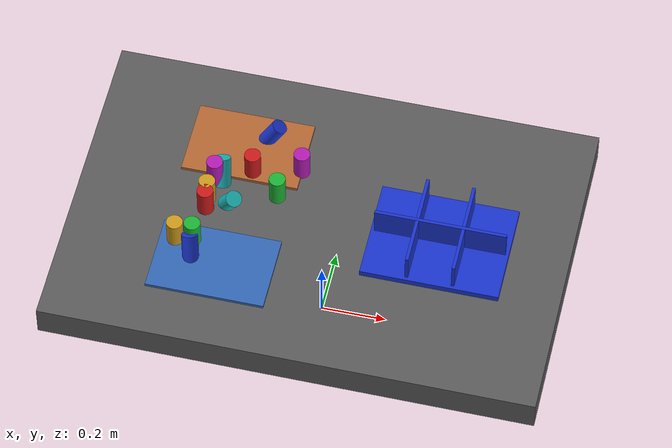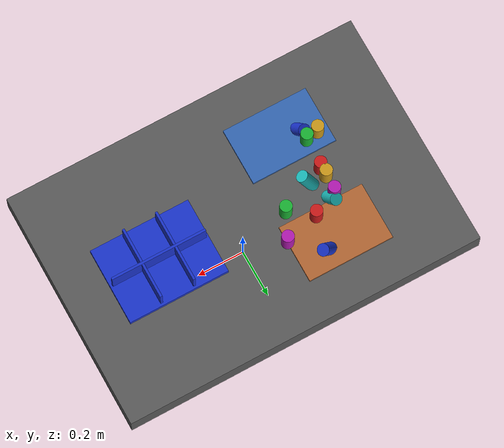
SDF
<?xml version="1.0" ?>
<sdf version="1.9">
  <!-- Standalone M1B scene.  The controller-backed Panda is spawned by the
       existing launch path; this file never alters the frozen M1A cube world. -->
  <world name="industrial_cylinder_v1">
    <physics name="bullet" type="bullet"><max_step_size>0.001</max_step_size><real_time_factor>1.0</real_time_factor></physics>
    <plugin name="gz::sim::systems::Physics" filename="gz-sim-physics-system"><engine><filename>gz-physics-bullet-featherstone-plugin</filename></engine></plugin>
    <plugin name="gz::sim::systems::UserCommands" filename="gz-sim-user-commands-system"/>
    <plugin name="gz::sim::systems::SceneBroadcaster" filename="gz-sim-scene-broadcaster-system"/>
    <plugin name="gz::sim::systems::Sensors" filename="gz-sim-sensors-system"><render_engine>ogre2</render_engine></plugin>
    <gravity>0 0 -9.81</gravity>
    <light type="directional" name="industrial_light"><pose>0 0 5 0 0 0</pose><direction>-0.3 0.2 -0.9</direction><diffuse>0.9 0.9 0.9 1</diffuse></light>
    <model name="industrial_work_table"><static>true</static><link name="link"><pose>0 0 0.4 0 0 0</pose><collision name="collision"><geometry><box><size>1.5 1.0 0.1</size></box></geometry></collision><visual name="visual"><geometry><box><size>1.5 1.0 0.1</size></box></geometry><material><diffuse>0.35 0.35 0.35 1</diffuse></material></visual></link></model>
    <model name="camera_fixture"><static>true</static><link name="camera_rgbd"><pose>-0.80 -0.80 1.40 0 0.77 0.93</pose><sensor name="front_rgbd" type="rgbd_camera"><always_on>1</always_on><update_rate>15</update_rate><topic>/xh/camera/rgbd</topic><camera><horizontal_fov>1.047</horizontal_fov><image><width>640</width><height>480</height><format>R8G8B8</format></image><clip><near>0.1</near><far>4.0</far></clip></camera></sensor></link></model>
    <model name="incoming_zone_a"><static>true</static><link name="link"><pose>-0.28 -0.22 0.455 0 0 0</pose><visual name="visual"><geometry><box><size>0.36 0.24 0.01</size></box></geometry><material><diffuse>0.2 0.4 0.7 1</diffuse></material></visual></link></model>
    <model name="incoming_zone_b"><static>true</static><link name="link"><pose>-0.28 0.22 0.455 0 0 0</pose><visual name="visual"><geometry><box><size>0.36 0.24 0.01</size></box></geometry><material><diffuse>0.7 0.4 0.2 1</diffuse></material></visual></link></model>
    <!-- M1B_RANDOM_PARTS_BEGIN -->
    <model name="cylinder_01"><pose>-0.3517 -0.0290 0.5000 0.0000 0.0000 1.5512</pose><link name="link"><inertial><mass>0.06</mass></inertial><collision name="collision"><geometry><cylinder><radius>0.025</radius><length>0.09</length></cylinder></geometry></collision><visual name="visual"><geometry><cylinder><radius>0.025</radius><length>0.09</length></cylinder></geometry><material><diffuse>0.800 0.100 0.100 1</diffuse><specular>0.15 0.15 0.15 1</specular></material></visual></link></model>
    <model name="cylinder_02"><pose>-0.1517 0.0604 0.5000 3.1416 0.0000 -2.8974</pose><link name="link"><inertial><mass>0.06</mass></inertial><collision name="collision"><geometry><cylinder><radius>0.025</radius><length>0.09</length></cylinder></geometry></collision><visual name="visual"><geometry><cylinder><radius>0.025</radius><length>0.09</length></cylinder></geometry><material><diffuse>0.100 0.700 0.200 1</diffuse><specular>0.15 0.15 0.15 1</specular></material></visual></link></model>
    <model name="cylinder_03"><pose>-0.3564 -0.1982 0.4800 0.4500 -0.3000 -2.2902</pose><link name="link"><inertial><mass>0.06</mass></inertial><collision name="collision"><geometry><cylinder><radius>0.025</radius><length>0.09</length></cylinder></geometry></collision><visual name="visual"><geometry><cylinder><radius>0.025</radius><length>0.09</length></cylinder></geometry><material><diffuse>0.100 0.200 0.800 1</diffuse><specular>0.15 0.15 0.15 1</specular></material></visual></link></model>
    <model name="cylinder_04"><pose>-0.3551 0.0079 0.5000 0.0000 0.0000 -2.9144</pose><link name="link"><inertial><mass>0.06</mass></inertial><collision name="collision"><geometry><cylinder><radius>0.025</radius><length>0.09</length></cylinder></geometry></collision><visual name="visual"><geometry><cylinder><radius>0.025</radius><length>0.09</length></cylinder></geometry><material><diffuse>0.800 0.600 0.100 1</diffuse><specular>0.15 0.15 0.15 1</specular></material></visual></link></model>
    <model name="cylinder_05"><pose>-0.1009 0.1676 0.5000 3.1416 0.0000 0.1879</pose><link name="link"><inertial><mass>0.06</mass></inertial><collision name="collision"><geometry><cylinder><radius>0.025</radius><length>0.09</length></cylinder></geometry></collision><visual name="visual"><geometry><cylinder><radius>0.025</radius><length>0.09</length></cylinder></geometry><material><diffuse>0.700 0.100 0.700 1</diffuse><specular>0.15 0.15 0.15 1</specular></material></visual></link></model>
    <model name="cylinder_06"><pose>-0.3295 0.0989 0.4800 0.4500 -0.3000 -2.3454</pose><link name="link"><inertial><mass>0.06</mass></inertial><collision name="collision"><geometry><cylinder><radius>0.025</radius><length>0.09</length></cylinder></geometry></collision><visual name="visual"><geometry><cylinder><radius>0.025</radius><length>0.09</length></cylinder></geometry><material><diffuse>0.100 0.700 0.700 1</diffuse><specular>0.15 0.15 0.15 1</specular></material></visual></link></model>
    <model name="cylinder_07"><pose>-0.2445 0.1312 0.5000 0.0000 0.0000 -1.9282</pose><link name="link"><inertial><mass>0.06</mass></inertial><collision name="collision"><geometry><cylinder><radius>0.025</radius><length>0.09</length></cylinder></geometry></collision><visual name="visual"><geometry><cylinder><radius>0.025</radius><length>0.09</length></cylinder></geometry><material><diffuse>0.800 0.100 0.100 1</diffuse><specular>0.15 0.15 0.15 1</specular></material></visual></link></model>
    <model name="cylinder_08"><pose>-0.3608 -0.1526 0.5000 3.1416 0.0000 0.9777</pose><link name="link"><inertial><mass>0.06</mass></inertial><collision name="collision"><geometry><cylinder><radius>0.025</radius><length>0.09</length></cylinder></geometry></collision><visual name="visual"><geometry><cylinder><radius>0.025</radius><length>0.09</length></cylinder></geometry><material><diffuse>0.100 0.700 0.200 1</diffuse><specular>0.15 0.15 0.15 1</specular></material></visual></link></model>
    <model name="cylinder_09"><pose>-0.2165 0.2674 0.4800 0.4500 -0.3000 2.3244</pose><link name="link"><inertial><mass>0.06</mass></inertial><collision name="collision"><geometry><cylinder><radius>0.025</radius><length>0.09</length></cylinder></geometry></collision><visual name="visual"><geometry><cylinder><radius>0.025</radius><length>0.09</length></cylinder></geometry><material><diffuse>0.100 0.200 0.800 1</diffuse><specular>0.15 0.15 0.15 1</specular></material></visual></link></model>
    <model name="cylinder_10"><pose>-0.4123 -0.1606 0.5000 0.0000 0.0000 1.0284</pose><link name="link"><inertial><mass>0.06</mass></inertial><collision name="collision"><geometry><cylinder><radius>0.025</radius><length>0.09</length></cylinder></geometry></collision><visual name="visual"><geometry><cylinder><radius>0.025</radius><length>0.09</length></cylinder></geometry><material><diffuse>0.800 0.600 0.100 1</diffuse><specular>0.15 0.15 0.15 1</specular></material></visual></link></model>
    <model name="cylinder_11"><pose>-0.3495 0.0816 0.5000 3.1416 0.0000 0.1307</pose><link name="link"><inertial><mass>0.06</mass></inertial><collision name="collision"><geometry><cylinder><radius>0.025</radius><length>0.09</length></cylinder></geometry></collision><visual name="visual"><geometry><cylinder><radius>0.025</radius><length>0.09</length></cylinder></geometry><material><diffuse>0.700 0.100 0.700 1</diffuse><specular>0.15 0.15 0.15 1</specular></material></visual></link></model>
    <model name="cylinder_12"><pose>-0.2827 -0.0049 0.4800 0.4500 -0.3000 1.3768</pose><link name="link"><inertial><mass>0.06</mass></inertial><collision name="collision"><geometry><cylinder><radius>0.025</radius><length>0.09</length></cylinder></geometry></collision><visual name="visual"><geometry><cylinder><radius>0.025</radius><length>0.09</length></cylinder></geometry><material><diffuse>0.100 0.700 0.700 1</diffuse><specular>0.15 0.15 0.15 1</specular></material></visual></link></model>
    <!-- M1B_RANDOM_PARTS_END -->
    <model name="blue_partition_bin"><static>true</static><pose>0.36 0 0.45 0 0 0</pose><link name="link"><collision name="floor"><pose>0 0 0.01 0 0 0</pose><geometry><box><size>0.42 0.32 0.02</size></box></geometry></collision><visual name="floor_visual"><pose>0 0 0.01 0 0 0</pose><geometry><box><size>0.42 0.32 0.02</size></box></geometry><material><diffuse>0.1 0.2 0.8 1</diffuse></material></visual><visual name="row_divider"><pose>0 0 0.06 0 0 0</pose><geometry><box><size>0.40 0.01 0.10</size></box></geometry><material><diffuse>0.1 0.2 0.8 1</diffuse></material></visual><visual name="col_divider_a"><pose>-0.07 0 0.06 0 0 0</pose><geometry><box><size>0.01 0.30 0.10</size></box></geometry><material><diffuse>0.1 0.2 0.8 1</diffuse></material></visual><visual name="col_divider_b"><pose>0.07 0 0.06 0 0 0</pose><geometry><box><size>0.01 0.30 0.10</size></box></geometry><material><diffuse>0.1 0.2 0.8 1</diffuse></material></visual></link></model>
    <!-- Reserved only: second table, bin transport corridor, stackable-bin
         collision volume, and second arm mounting namespace. -->
  </world>
</sdf>
